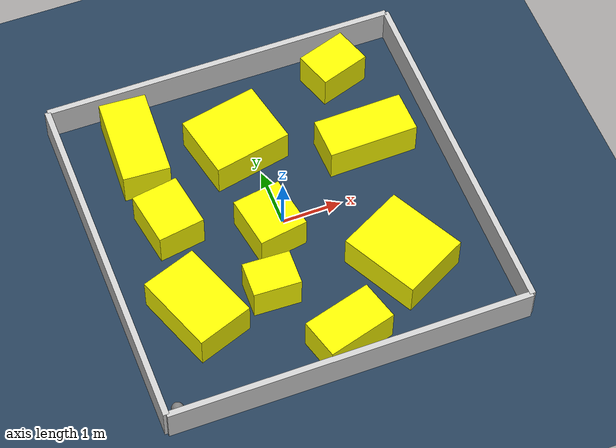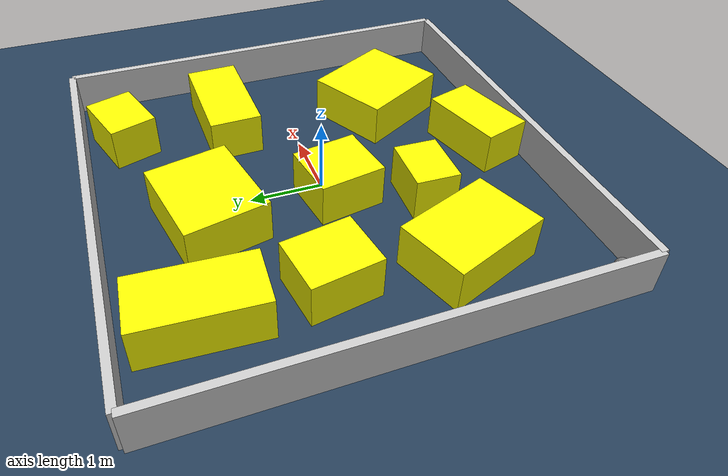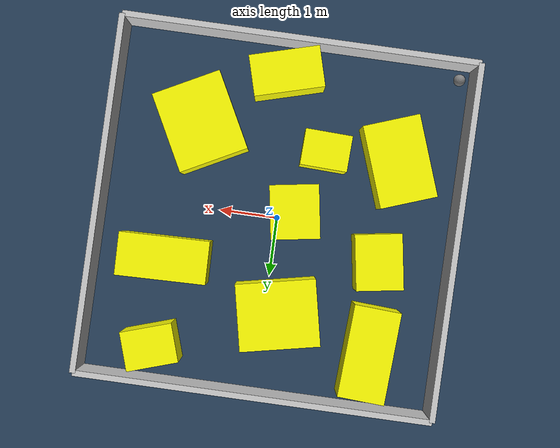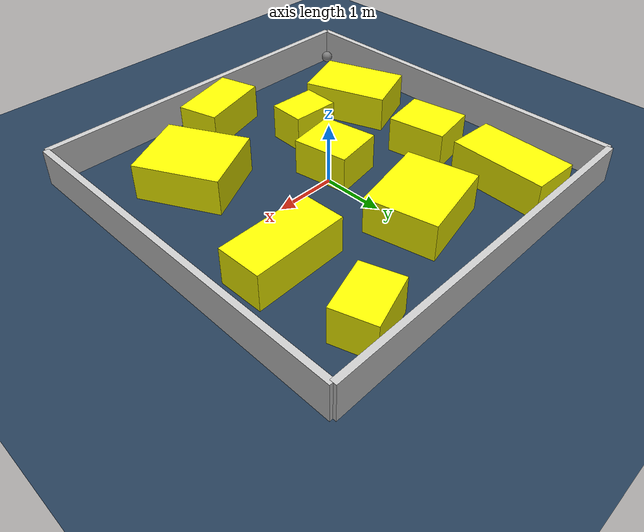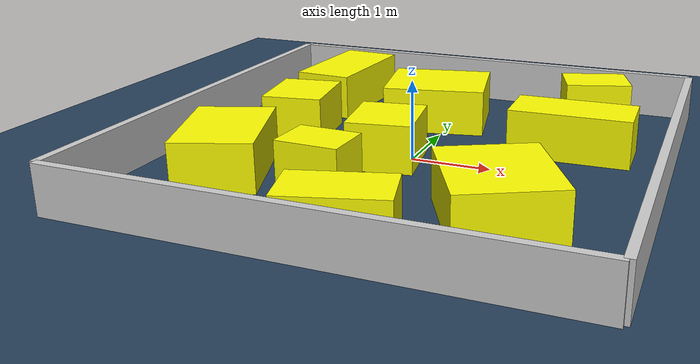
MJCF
<?xml version="1.0" ?>
<mujoco model="generated_environment">
  <option timestep="0.01" integrator="RK4" cone="elliptic"/>
  <default>
    <geom density="1"/>
  </default>
  <asset>
    <texture builtin="gradient" height="3072" rgb1="0.3 0.5 0.7" rgb2="0 0 0" type="skybox" width="512"/>
    <texture builtin="checker" height="300" mark="edge" markrgb="0.8 0.8 0.8" name="groundplane" rgb1="0.2 0.3 0.4" rgb2="0.1 0.2 0.3" type="2d" width="300"/>
    <material name="groundplane" reflectance="0.2" texrepeat="5 5" texture="groundplane" texuniform="true"/>
    <material name="robot" rgba="1.0 1.0 0.0 1.0"/>
  </asset>
  <worldbody>
    <light dir="0 0 -1" directional="true" pos="0 0 1.5"/>
    <geom condim="4" friction="0.5 0.005 0.001" material="groundplane" name="floor" size="0 0 0.05" type="plane"/>
    <body name="walls">
      <geom name="wall_1" condim="4" pos="-3.0 0.0 0.3" rgba="0.800000011920929 0.800000011920929 0.800000011920929 1.0" size="0.05 3.0 0.3" type="box"/>
      <geom name="wall_2" condim="4" pos="3.0 0.0 0.3" rgba="0.800000011920929 0.800000011920929 0.800000011920929 1.0" size="0.05 3.0 0.3" type="box"/>
      <geom name="wall_3" condim="4" pos="0.0 -3.0 0.3" rgba="0.800000011920929 0.800000011920929 0.800000011920929 1.0" size="3.0 0.05 0.3" type="box"/>
      <geom name="wall_4" condim="4" pos="0.0 3.0 0.3" rgba="0.800000011920929 0.800000011920929 0.800000011920929 1.0" size="3.0 0.05 0.3" type="box"/>
    </body>
    <body name="robot">
      <joint name="joint_x" type="slide" pos="0 0 0" axis="1 0 0"/>
      <joint name="joint_y" type="slide" pos="0 0 0" axis="0 1 0"/>
      <geom name="robot" type="sphere" pos="-2.75 -2.75 0.2" size="0.1 0.0 0.0" mass="5.0" friction="1.0 0.005 0.001" condim="4" rgba="0.5 0.5 0.5 1.0"/>
    </body>
    <body name="obstacle_1_movable">
      <geom name="obstacle_1_movable" condim="4" pos="1.7909920584450818 0.9197021928526898 0.3" euler="0 0 91.39945299844716" friction="0.0 0.005 0.001" rgba="1 1 0 1" size="0.36279793102673413 0.7575538135996696 0.3" type="box" mass="0.1"/>
      <joint type="free"/>
    </body>
    <body name="obstacle_2_movable">
      <geom name="obstacle_2_movable" condim="4" pos="-1.8849200971139592 -1.205553890085003 0.3" euler="0 0 19.96743221210446" friction="0.0 0.005 0.001" rgba="1 1 0 1" size="0.48291755716796697 0.7003527012431399 0.3" type="box" mass="0.1"/>
      <joint type="free"/>
    </body>
    <body name="obstacle_3_movable">
      <geom name="obstacle_3_movable" condim="4" pos="1.4870126105885109 -1.4073141583191724 0.3" euler="0 0 207.57709135827128" friction="0.0 0.005 0.001" rgba="1 1 0 1" size="0.5943584918820985 0.6873083248211701 0.3" type="box" mass="0.1"/>
      <joint type="free"/>
    </body>
    <body name="obstacle_4_movable">
      <geom name="obstacle_4_movable" condim="4" pos="-0.2308931758046131 1.5952291646775718 0.3" euler="0 0 11.850560375252615" friction="0.0 0.005 0.001" rgba="1 1 0 1" size="0.6708917555237308 0.5617584489881227 0.3" type="box" mass="0.1"/>
      <joint type="free"/>
    </body>
    <body name="obstacle_5_movable">
      <geom name="obstacle_5_movable" condim="4" pos="-0.27627113614651044 -0.13885944729081645 0.3" euler="0 0 279.2903534194069" friction="0.0 0.005 0.001" rgba="1 1 0 1" size="0.4537306508717147 0.4115264477527818 0.3" type="box" mass="0.1"/>
      <joint type="free"/>
    </body>
    <body name="obstacle_6_movable">
      <geom name="obstacle_6_movable" condim="4" pos="-1.8234616135033994 2.031954115979813 0.3" euler="0 0 356.84367343325397" friction="0.0 0.005 0.001" rgba="1 1 0 1" size="0.39452176476808876 0.7761865910437229 0.3" type="box" mass="0.1"/>
      <joint type="free"/>
    </body>
    <body name="obstacle_7_movable">
      <geom name="obstacle_7_movable" condim="4" pos="0.17331403492884423 -2.4310037956633246 0.3" euler="0 0 195.76475024261575" friction="0.0 0.005 0.001" rgba="1 1 0 1" size="0.5934368280589924 0.343857596297374 0.3" type="box" mass="0.1"/>
      <joint type="free"/>
    </body>
    <body name="obstacle_8_movable">
      <geom name="obstacle_8_movable" condim="4" pos="1.8040860853330463 2.410175083543864 0.3" euler="0 0 198.15006311436827" friction="0.0 0.005 0.001" rgba="1 1 0 1" size="0.43584647424791495 0.33036070205099455 0.3" type="box" mass="0.1"/>
      <joint type="free"/>
    </body>
    <body name="obstacle_9_movable">
      <geom name="obstacle_9_movable" condim="4" pos="-0.6518622902884061 -1.221705674307749 0.3" euler="0 0 88.031690899115" friction="0.0 0.005 0.001" rgba="1 1 0 1" size="0.3025008064596296 0.39361892546878374 0.3" type="box" mass="0.1"/>
      <joint type="free"/>
    </body>
    <body name="obstacle_10_movable">
      <geom name="obstacle_10_movable" condim="4" pos="-1.7726906981709787 0.4946950668601091 0.3" euler="0 0 9.217597844531431" friction="0.0 0.005 0.001" rgba="1 1 0 1" size="0.3948541912891557 0.46825548326802685 0.3" type="box" mass="0.1"/>
      <joint type="free"/>
    </body>
  </worldbody>
  <actuator>
    <motor name="actuator_x" joint="joint_x" gear="1" ctrlrange="-1 1"/>
    <motor name="actuator_y" joint="joint_y" gear="1" ctrlrange="-1 1"/>
  </actuator>
</mujoco>
